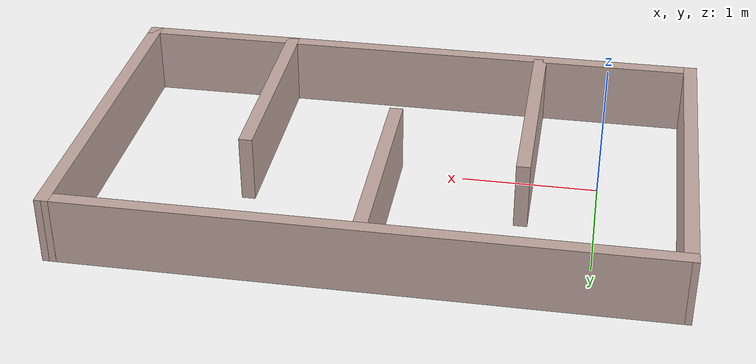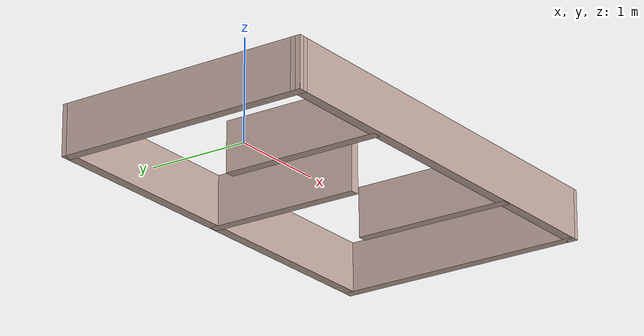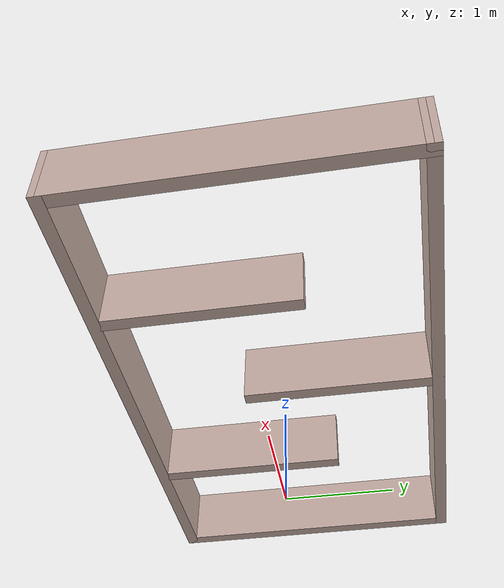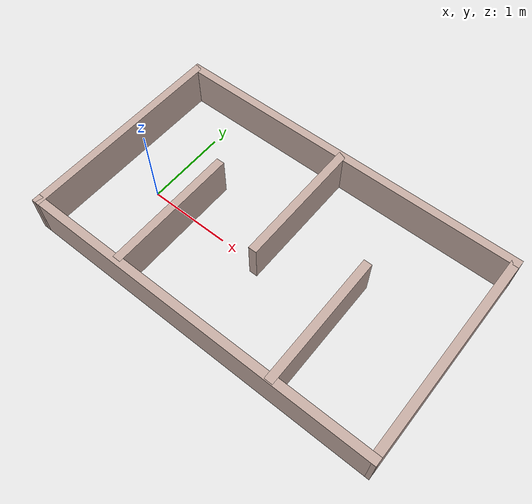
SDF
<?xml version='1.0'?>
<sdf version='1.7'>
  <model name='robo_map2'>
    <pose>1.525 0.2 0 0 -0 0</pose>
    <link name='Wall_0'>
      <collision name='Wall_0_Collision'>
        <geometry>
          <box>
            <size>1.6 0.1 0.5</size>
          </box>
        </geometry>
        <pose>0 0 0.25 0 -0 0</pose>
      </collision>
      <visual name='Wall_0_Visual'>
        <pose>0 0 0.25 0 -0 0</pose>
        <geometry>
          <box>
            <size>1.6 0.1 0.5</size>
          </box>
        </geometry>
        <material>
          <script>
            <uri>file://media/materials/scripts/gazebo.material</uri>
            <name>Gazebo/Grey</name>
          </script>
          <ambient>0.760784 0.662745 0.627451 1</ambient>
        </material>
        <meta>
          <layer>0</layer>
        </meta>
      </visual>
      <pose>-1.0 -0.45 0 0 -0 1.5708</pose>
    </link>
    <link name='Wall_3'>
      <collision name='Wall_3_Collision'>
        <geometry>
          <box>
            <size>1.6 0.1 0.5</size>
          </box>
        </geometry>
        <pose>0 0 0.25 0 -0 0</pose>
      </collision>
      <visual name='Wall_3_Visual'>
        <pose>0 0 0.25 0 -0 0</pose>
        <geometry>
          <box>
            <size>1.6 0.1 0.5</size>
          </box>
        </geometry>
        <material>
          <script>
            <uri>file://media/materials/scripts/gazebo.material</uri>
            <name>Gazebo/Grey</name>
          </script>
          <ambient>0.760784 0.662745 0.627451 1</ambient>
        </material>
        <meta>
          <layer>0</layer>
        </meta>
      </visual>
      <pose>0.0 0.49 0 0 -0 -1.5708</pose>
    </link>
    <link name='Wall_5'>
      <collision name='Wall_5_Collision'>
        <geometry>
          <box>
            <size>1.6 0.1 0.5</size>
          </box>
        </geometry>
        <pose>0 0 0.25 0 -0 0</pose>
      </collision>
      <visual name='Wall_5_Visual'>
        <pose>0 0 0.25 0 -0 0</pose>
        <geometry>
          <box>
            <size>1.6 0.1 0.5</size>
          </box>
        </geometry>
        <material>
          <script>
            <uri>file://media/materials/scripts/gazebo.material</uri>
            <name>Gazebo/Grey</name>
          </script>
          <ambient>0.760784 0.662745 0.627451 1</ambient>
        </material>
        <meta>
          <layer>0</layer>
        </meta>
      </visual>
      <pose>1.0 -0.49 0 0 -0 1.5708</pose>
    </link>

    <link name='Wall_13'>
      <collision name='Wall_13_Collision'>
        <geometry>
          <box>
            <size>4.409 0.1 0.5</size>
          </box>
        </geometry>
        <pose>0 0 0.25 0 -0 0</pose>
      </collision>
      <visual name='Wall_13_Visual'>
        <pose>0 0 0.25 0 -0 0</pose>
        <geometry>
          <box>
            <size>4.409 0.1 0.5</size>
          </box>
        </geometry>
        <material>
          <script>
            <uri>file://media/materials/scripts/gazebo.material</uri>
            <name>Gazebo/Grey</name>
          </script>
          <ambient>0.760784 0.662745 0.627451 1</ambient>
        </material>
        <meta>
          <layer>0</layer>
        </meta>
      </visual>
      <pose>0.009 1.24698 0 0 -0 0</pose>
    </link>
    <link name='Wall_15'>
      <collision name='Wall_15_Collision'>
        <geometry>
          <box>
            <size>4.409 0.1 0.5</size>
          </box>
        </geometry>
        <pose>0 0 0.25 0 -0 0</pose>
      </collision>
      <visual name='Wall_15_Visual'>
        <pose>0 0 0.25 0 -0 0</pose>
        <geometry>
          <box>
            <size>4.409 0.1 0.5</size>
          </box>
        </geometry>
        <material>
          <script>
            <uri>file://media/materials/scripts/gazebo.material</uri>
            <name>Gazebo/Grey</name>
          </script>
          <ambient>0.760784 0.662745 0.627451 1</ambient>
        </material>
        <meta>
          <layer>0</layer>
        </meta>
      </visual>
      <pose>-0.009 -1.25302 0 0 -0 0</pose>
    </link>
    <link name='Wall_17'>
      <collision name='Wall_17_Collision'>
        <geometry>
          <box>
            <size>2.60006 0.1 0.5</size>
          </box>
        </geometry>
        <pose>0 0 0.25 0 -0 0</pose>
      </collision>
      <visual name='Wall_17_Visual'>
        <pose>0 0 0.25 0 -0 0</pose>
        <geometry>
          <box>
            <size>2.60006 0.1 0.5</size>
          </box>
        </geometry>
        <material>
          <script>
            <uri>file://media/materials/scripts/gazebo.material</uri>
            <name>Gazebo/Grey</name>
          </script>
          <ambient>0.760784 0.662745 0.627451 1</ambient>
        </material>
        <meta>
          <layer>0</layer>
        </meta>
      </visual>
      <pose>2.1545 -0.003018 0 0 -0 -1.578</pose>
    </link>

    <link name='Wall_18'>
      <collision name='Wall_18_Collision'>
        <geometry>
          <box>
            <size>2.60002 0.1 0.5</size>
          </box>
        </geometry>
        <pose>0 0 0.25 0 -0 0</pose>
      </collision>
      <visual name='Wall_18_Visual'>
        <pose>0 0 0.25 0 -0 0</pose>
        <geometry>
          <box>
            <size>2.60002 0.1 0.5</size>
          </box>
        </geometry>
        <material>
          <script>
            <uri>file://media/materials/scripts/gazebo.material</uri>
            <name>Gazebo/Grey</name>
          </script>
          <ambient>0.760784 0.662745 0.627451 1</ambient>
        </material>
        <meta>
          <layer>0</layer>
        </meta>
      </visual>
      <pose>-2.1545 -0.003018 0 0 -0 1.5636</pose>
    </link>

    <static>1</static>
  </model>
</sdf>
